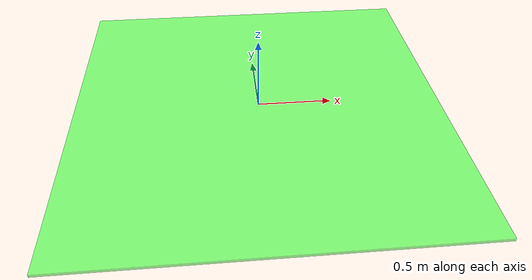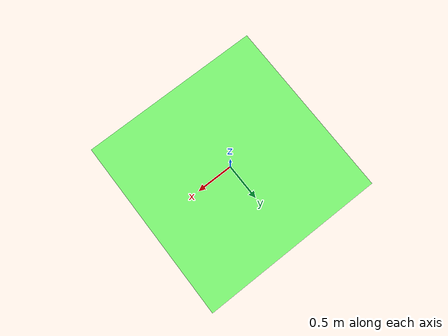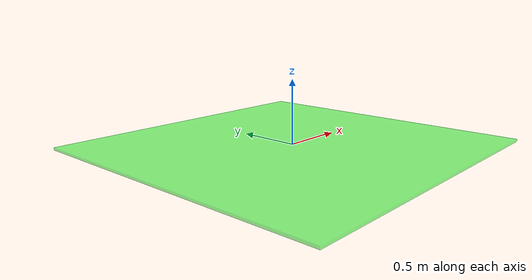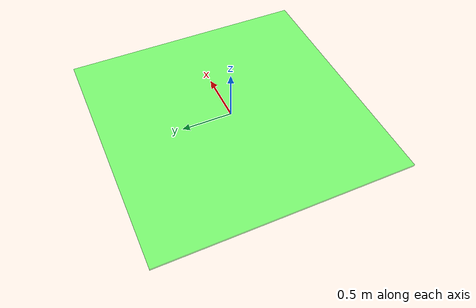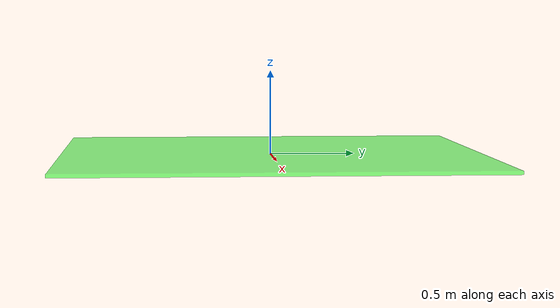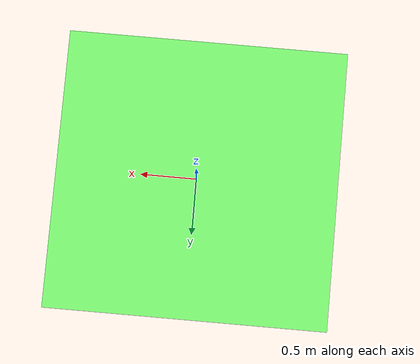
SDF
<?xml version="1.0" ?>
<sdf version="1.9">
  <model name="highlight_marker_grande">
    <static>true</static>
    <link name="link">
      <visual name="visual">
        <geometry>
          <box>
            <size>2.5 2.5 0.02</size>
          </box>
        </geometry>
        <material>
          <ambient>0.0 1.0 0.0 0.5</ambient>
          <diffuse>0.0 1.0 0.0 0.5</diffuse>
          <emissive>0.0 0.3 0.0 1</emissive>
        </material>
      </visual>
    </link>
  </model>
</sdf>
